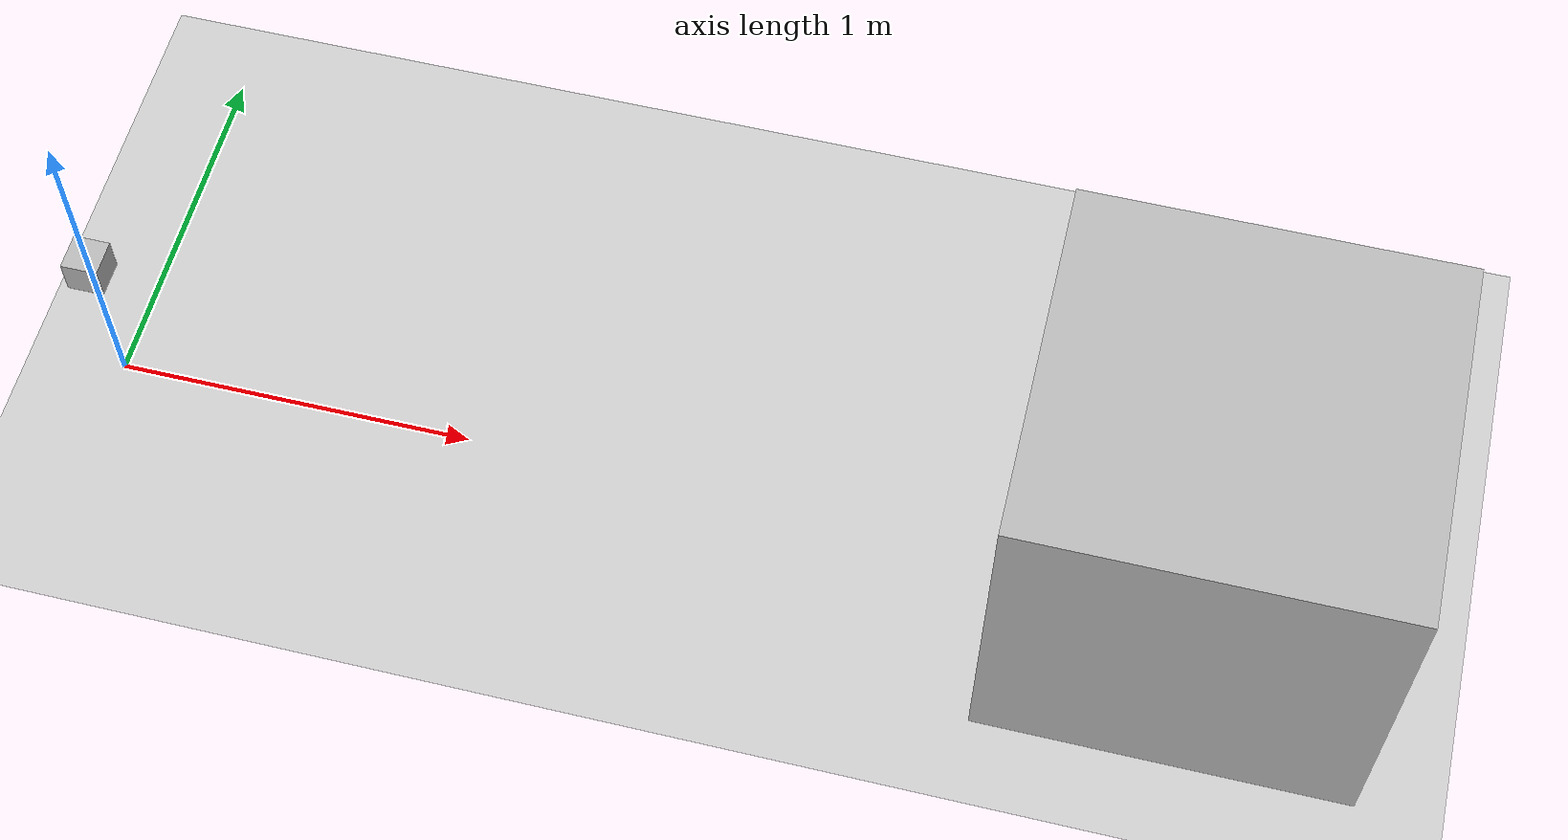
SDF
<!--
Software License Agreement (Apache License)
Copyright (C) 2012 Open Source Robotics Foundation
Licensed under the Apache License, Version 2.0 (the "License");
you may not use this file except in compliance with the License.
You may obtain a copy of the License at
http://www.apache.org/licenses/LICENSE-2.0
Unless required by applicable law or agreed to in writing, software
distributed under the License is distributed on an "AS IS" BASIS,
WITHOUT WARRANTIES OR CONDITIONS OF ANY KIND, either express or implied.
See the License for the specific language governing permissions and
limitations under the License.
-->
<?xml version="1.0" ?>
<sdf version="1.6">
  <world name="default">
    <include>
      <uri>model://ground_plane</uri>
    </include>
    <include>
      <uri>model://sun</uri>
    </include>

    <model name="camera_intrinsics">
      <static>true</static>
      <pose>0.0 0.0 0.5 0 0 0</pose>
      <link name="link">
        <visual name="visual">
          <geometry>
            <box>
              <size>0.1 0.1 0.1</size>
            </box>
          </geometry>
        </visual>
        <sensor name="camera" type="camera">
          <camera>
            <horizontal_fov>1.0472</horizontal_fov>
            <image>
              <width>320</width>
              <height>240</height>
            </image>
            <lens>
              <intrinsics>
                <fx>277</fx>
                <fy>277</fy>
                <cx>160</cx>
                <cy>120</cy>
                <s>0</s>
              </intrinsics>
            </lens>
          </camera>
          <always_on>1</always_on>
          <update_rate>30</update_rate>
          <visualize>true</visualize>
        </sensor>
      </link>
    </model>

    <model name="camera">
      <static>true</static>
      <pose>0.0 0.0 0.5 0 0 0</pose>
      <link name="link">
        <visual name="visual">
          <geometry>
            <box>
              <size>0.1 0.1 0.1</size>
            </box>
          </geometry>
        </visual>
        <sensor name="camera" type="camera">
          <camera>
            <horizontal_fov>1.0472</horizontal_fov>
            <image>
              <width>320</width>
              <height>240</height>
            </image>
          </camera>
          <always_on>1</always_on>
          <update_rate>30</update_rate>
          <visualize>true</visualize>
        </sensor>
      </link>
    </model>

    <model name="box">
      <pose>3 0 0.5 0 0 0</pose>
      <link name="link">
        <collision name="collision">
          <geometry>
            <box>
              <size>1 1 1</size>
            </box>
          </geometry>
        </collision>
        <visual name="visual">
          <geometry>
            <box>
              <size>1 1 1</size>
            </box>
          </geometry>
        </visual>
      </link>
    </model>

  </world>
</sdf>
